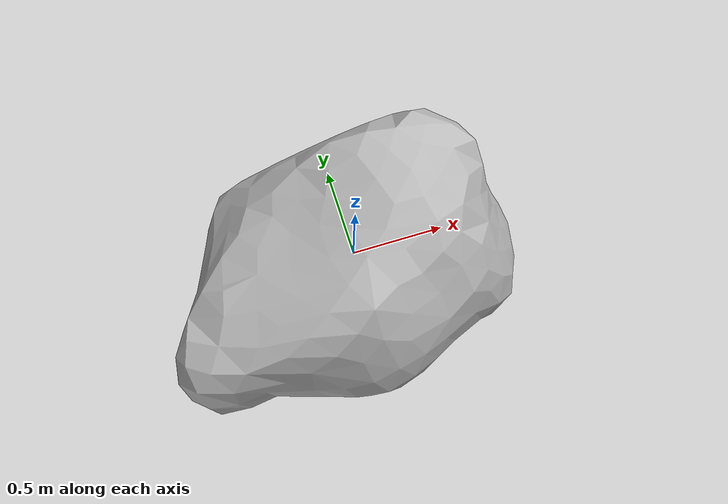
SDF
<?xml version="1.0"?>
<sdf version="1.4">
    <model name="subsea_rock_1">
        <pose>0 0 0 0 0 0</pose>
        <static>true</static>
        <link name="subsea_rock_1_body">
            <visual name="visual">
                <geometry>
                    <mesh>
                        <uri>model://subsea_rock_1/visual.osgb</uri>
                    </mesh>
                </geometry>
            </visual>
            <collision name="collision">
                <geometry>
                    <mesh>
                        <uri>model://subsea_rock_1/collision.stl</uri>
                    </mesh>
                </geometry>
            </collision>
            <inertial>
                <pose>0 0 -1 0 0 0</pose>
                <inertia>
                    <ixx>0.0</ixx>
                    <ixy>0</ixy>
                    <ixz>0.0</ixz>
                    <iyy>0.0</iyy>
                    <iyz>0</iyz>
                    <izz>0.0</izz>
                </inertia>
                <mass>1.0</mass>
            </inertial>
        </link>
    </model>
</sdf>
